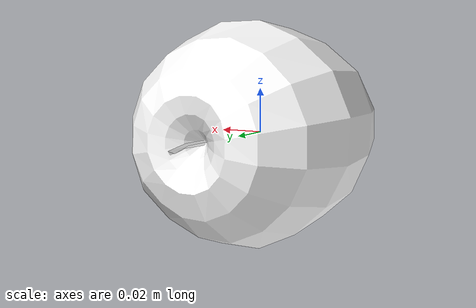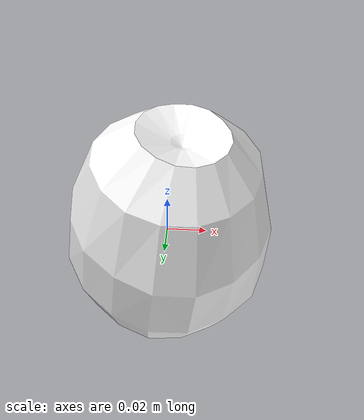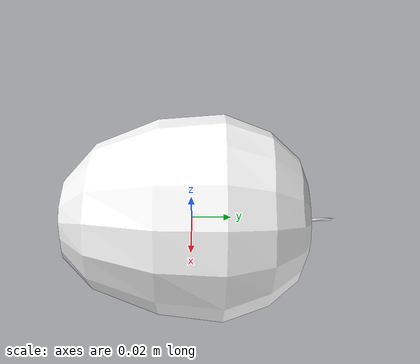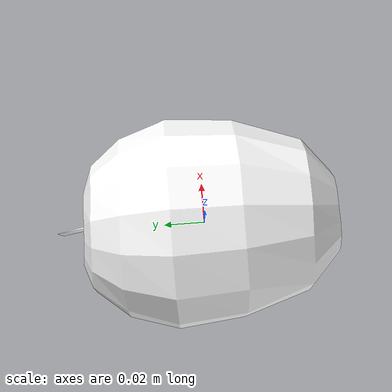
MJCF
<mujoco model="Apple_11">
  <default>
    <default class="visual">
      <geom group="2" type="mesh" contype="0" conaffinity="0"/>
    </default>
    <default class="collision">
      <geom group="3" type="mesh"/>
    </default>
  </default>
  <asset>
    <material name="Apple1_Mat3" specular="0.5" shininess="0.5" rgba="1 1 1 1.0"/>
    <mesh file="Apple_11.obj"/>
    <mesh file="Apple_11_collision_0.obj"/>
    <mesh file="Apple_11_collision_1.obj"/>
    <mesh file="Apple_11_collision_2.obj"/>
    <mesh file="Apple_11_collision_3.obj"/>
    <mesh file="Apple_11_collision_4.obj"/>
    <mesh file="Apple_11_collision_5.obj"/>
    <mesh file="Apple_11_collision_6.obj"/>
  </asset>
  <worldbody>
    <body name="Apple_11">
      <geom material="Apple1_Mat3" mesh="Apple_11" class="visual"/>
      <geom mesh="Apple_11_collision_0" rgba="0.049490458876088605 0.8155906472411028 0.9174262129412066 1" class="collision"/>
      <geom mesh="Apple_11_collision_1" rgba="0.5957001673560393 0.9510789140359277 0.7083130409609992 1" class="collision"/>
      <geom mesh="Apple_11_collision_2" rgba="0.1414789588776727 0.4445941806352428 0.5991376517187738 1" class="collision"/>
      <geom mesh="Apple_11_collision_3" rgba="0.674463822028148 0.5807556025296335 0.5789592736646044 1" class="collision"/>
      <geom mesh="Apple_11_collision_4" rgba="0.6759297322757667 0.7436141379488491 0.680154441311775 1" class="collision"/>
      <geom mesh="Apple_11_collision_5" rgba="0.3159221475593128 0.26340215574302417 0.4054710067305992 1" class="collision"/>
      <geom mesh="Apple_11_collision_6" rgba="0.38866600359446735 0.00490349540606938 0.6249556698551983 1" class="collision"/>
    </body>
  </worldbody>
</mujoco>
